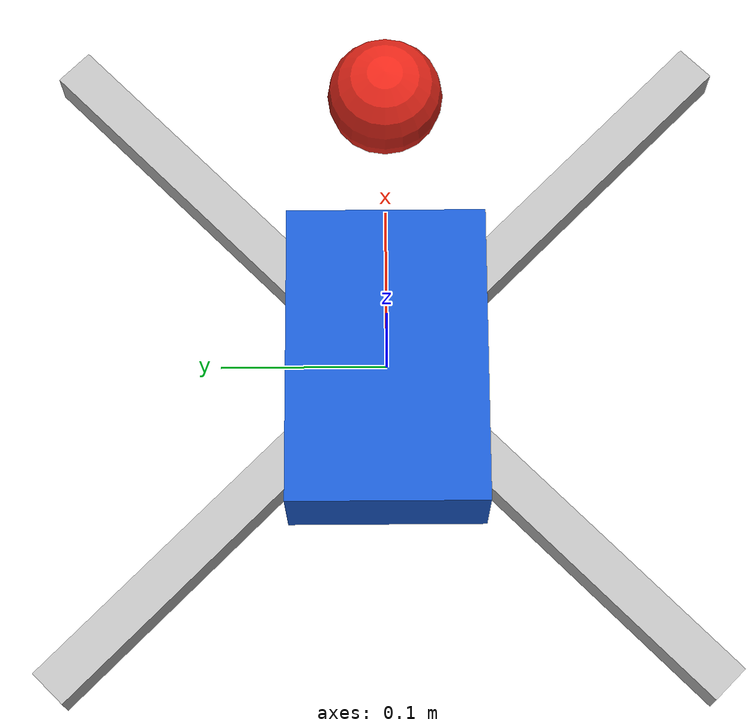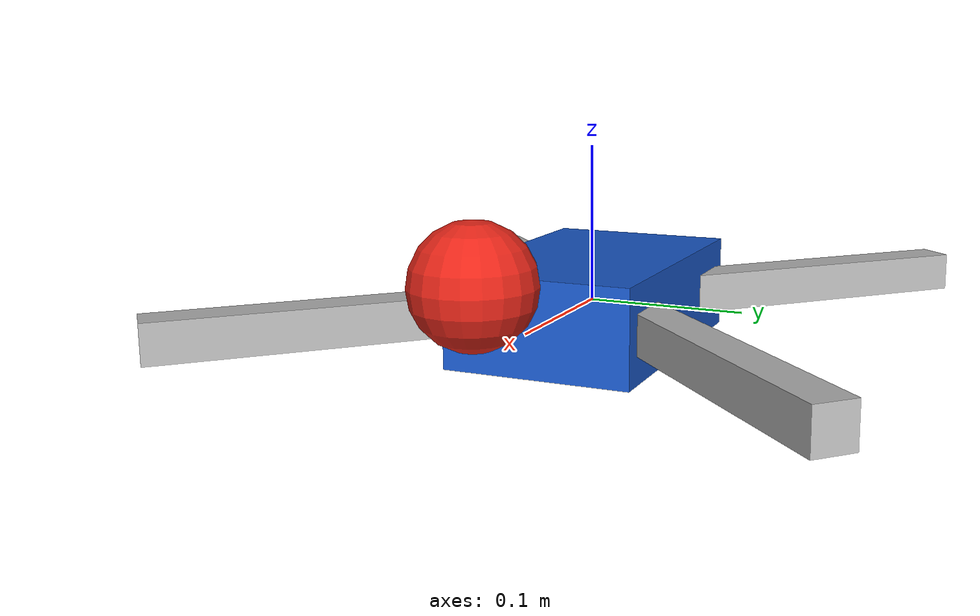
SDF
<?xml version="1.0"?>
<sdf version="1.9">
  <model name="quadrotor_visual">
    <static>true</static>
    <link name="body">
      <visual name="core">
        <geometry><box><size>0.18 0.12 0.06</size></box></geometry>
        <material><ambient>0.1 0.35 0.8 1</ambient><diffuse>0.1 0.35 0.8 1</diffuse></material>
      </visual>
      <visual name="arm_a">
        <pose>0 0 0 0 0 0.7854</pose>
        <geometry><box><size>0.55 0.025 0.025</size></box></geometry>
      </visual>
      <visual name="arm_b">
        <pose>0 0 0 0 0 -0.7854</pose>
        <geometry><box><size>0.55 0.025 0.025</size></box></geometry>
      </visual>
      <visual name="front">
        <pose>0.16 0 0.04 0 0 0</pose>
        <geometry><sphere><radius>0.035</radius></sphere></geometry>
        <material><ambient>0.9 0.15 0.1 1</ambient><diffuse>0.9 0.15 0.1 1</diffuse></material>
      </visual>
    </link>
  </model>
</sdf>
